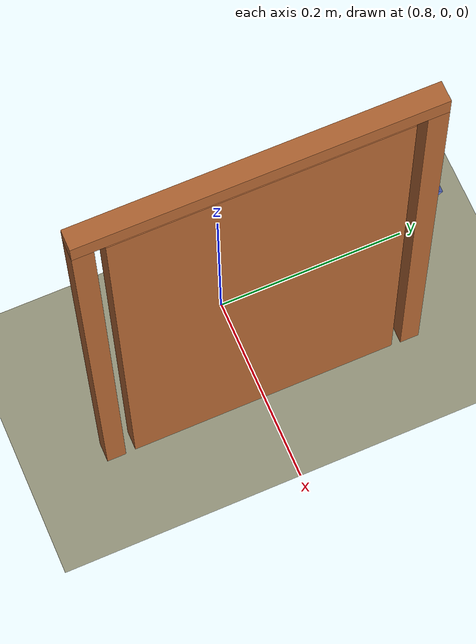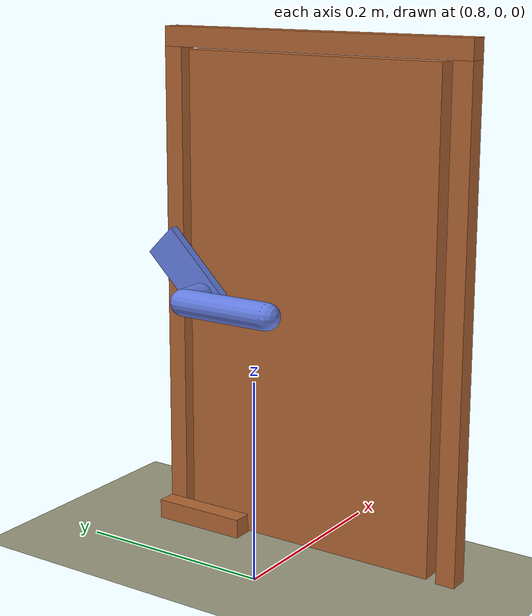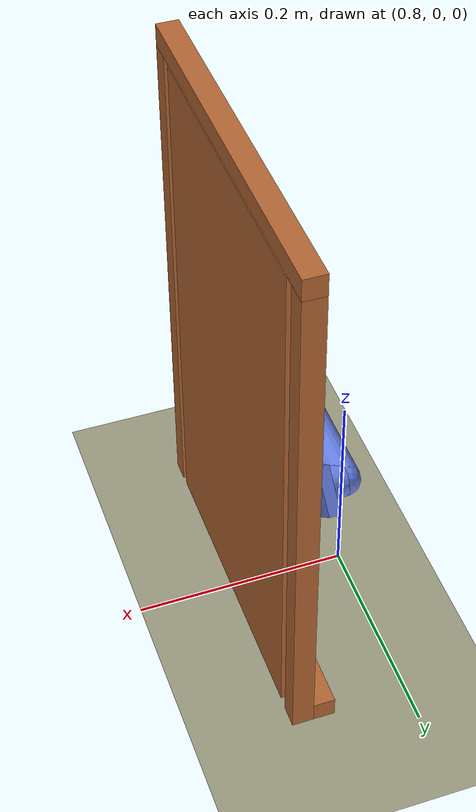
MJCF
<mujoco model='sawyer'>
    <compiler angle='radian' coordinate='local' />
	<option collision='all' impratio='5' cone='elliptic' timestep='0.001' gravity='0 0 -9.8' viscosity='0' iterations='20' />
    <size njmax='1500' nconmax='300' />

	<!--  ================= Visual Elements ================= /-->
	<asset>
		<material name='MatGnd' specular='.3' shininess='.3' reflectance='0.3' rgba='.5 .55 .5 1'/>
	</asset>

	<!--  ================= Physical Properties ================= /-->
	<default>
		<geom solref='0.01 1' solimp='0.95 0.95 0.01' condim='4'/>

		<default class='table'>
			<geom material='MatGnd' rgba='.6 .6 .5 1' solref='0.01 1' solimp='0.95 0.98 0.001' contype='1' condim='1' conaffinity='1' />
		</default>

		<default class='obstacle'>
			<geom material='MatGnd' rgba='.7 .4 .2 1' solref='0.01 1' solimp='0.95 0.98 0.001' contype='1' condim='1' conaffinity='1' />
		</default>

		<default class='object'>
			<geom rgba='0.4 0.5 0.9 1' solmix='0' density='400'/>
		</default>
	</default>

	<!--  ================= Kinematic Tree ================= /-->
    <worldbody>
		<light directional='true' cutoff='40' exponent='10' diffuse='.4 .4 .4' specular='.7 .7 .7' pos='0.9 0 1.5' dir='0 0 -1'/>

		<!--  ================= Table ================= /-->
		<geom name='tableTop' material='MatGnd' type='plane' pos='0.6 0 0' size='0.4 0.6 0.5' class='table'/>

		<body name='shift'>
			<!--  ================= Obstacle ================= /-->
			<body name='doorframe' pos='0.9 0 0' quat='1 0 0 0'>
				<geom type='box' class='obstacle' size='0.01 0.01 0.25' pos='0 0.16 0.25'/>
				<geom type='box' class='obstacle' size='0.01 0.01 0.25' pos='0 -0.16 0.25'/>
				<geom type='box' class='obstacle' size='0.01 0.17 0.01' pos='0 0 0.51'/>
				<geom type='box' class='obstacle' size='0.01 0.05 0.01' pos='-0.02 0.12 0.01'/>
				<body name='door' pos='0 0 0' quat='1 0 0 0'>
					<joint type='slide' pos='0 -0.13 0' axis='1 0 0' />
					<geom type='box' class='obstacle' size='0.01 0.14 0.248' pos='0 0 0.25' />

					<!--  ================= Object ================= /-->
					<body name='object' pos='0 0.12 0.25' quat='1 0 0 0'>
						<joint pos='0 0 0' axis='1 0 0' range='0 0.786' springdamper='0.008 2' limited='true'/>
						<geom type='cylinder' size='0.014' fromto='0 0 0 -0.05 0 0' class='object' />
						<body name='bolt' pos='0 0 0' quat='0.924 0.383 0 0'>
							<geom type='box' size='0.0049 0.045 0.02' pos='-0.015 0.03 0' class='object' />
						</body>
						<geom type='capsule' size='0.014' fromto='-0.05 0 0 -0.05 -0.1 0' class='object' />
					</body>
				</body>
			</body>
		</body>
	</worldbody>

	<!--  ================= Sensors ================= /-->
	<sensor>
		<framepos name='obj_p' objtype='body' objname='object' />
		<framequat name='obj_r' objtype='body' objname='object' />
	</sensor>
</mujoco>
